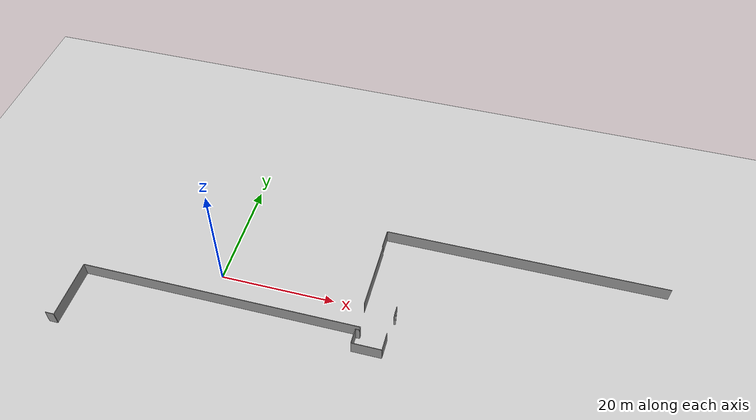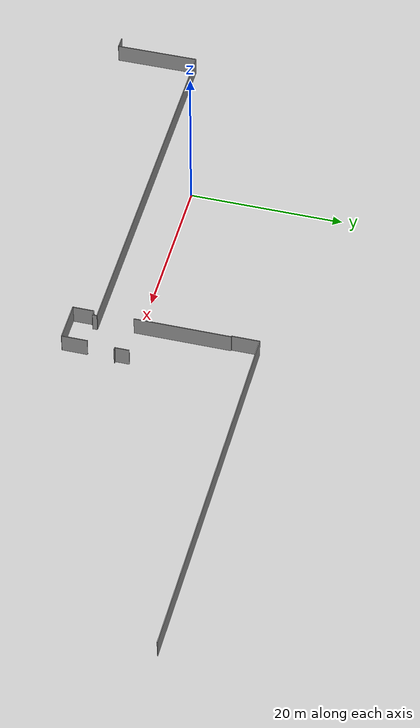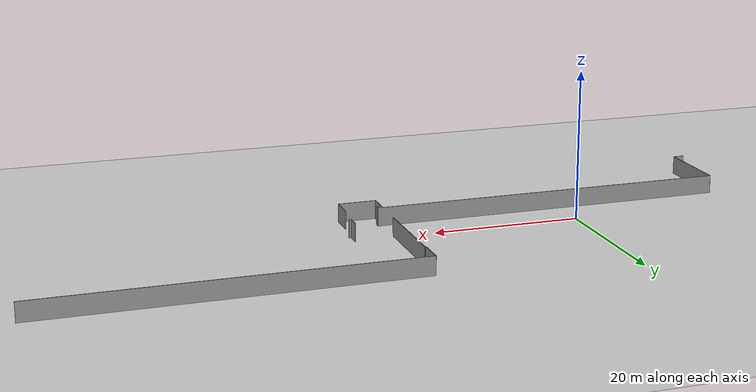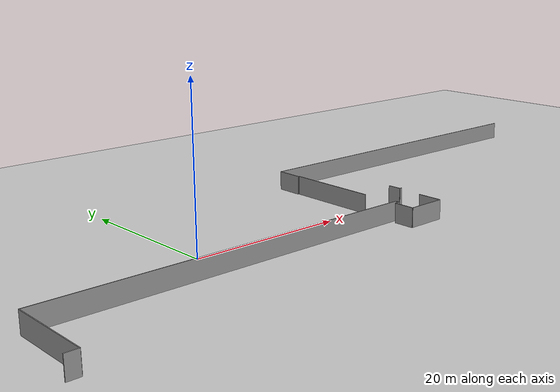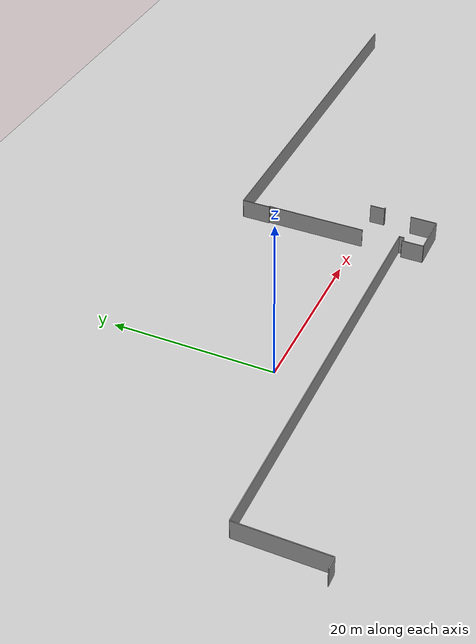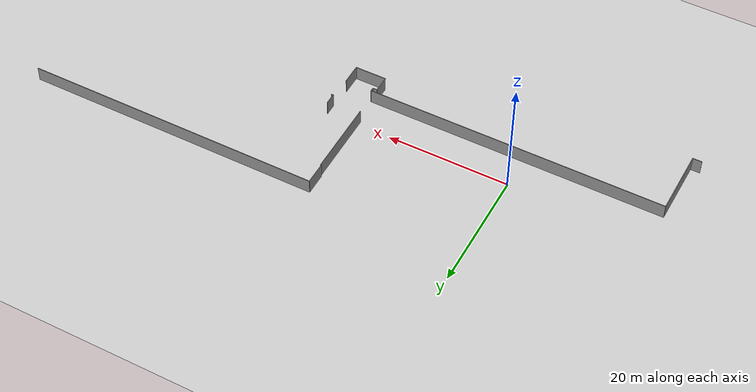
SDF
<sdf version="1.6">
 <world name="default">
  <model name="ground_plane">
   <static>1</static>
   <link name="link">
    <collision name="collision">
     <geometry><plane><normal>0 0 1</normal><size>100 100</size></plane></geometry>
     <surface><friction><ode><mu>100</mu><mu2>50</mu2></ode></friction></surface>
    </collision>
    <visual name="visual">
     <cast_shadows>0</cast_shadows>
     <geometry><plane><normal>0 0 1</normal><size>100 100</size></plane></geometry>
     <material>
      <script><uri>file://media/materials/scripts/gazebo.material</uri><name>Gazebo/Grey</name></script>
     </material>
    </visual>
   </link>
  </model>
  <model name="50055637">
   <static>1</static>
   <link name="Wall_81">
    <collision name="Wall_81_Collision">
     <geometry><box><size>12.4615257585 0.1 2.5</size></box></geometry>
     <pose>6.23076287926 0 1.25 0 0 0</pose>
    </collision>
    <visual name="Wall_81_Visual">
     <pose>6.23076287926 0 1.25 0 0 0</pose>
     <geometry><box><size>12.4615257585 0.1 2.5</size></box></geometry>
     <material>
      <script><uri>file://media/materials/scripts/gazebo.material</uri><name>Gazebo/Grey</name></script>
      <ambient>1 1 1 1</ambient>
     </material>
    </visual>
    <pose>99.5966794332 -16.0461881443 0 0 0 1.57079632679</pose>
   </link>
   <link name="Wall_82">
    <collision name="Wall_82_Collision">
     <geometry><box><size>0.126394949283 0.1 2.5</size></box></geometry>
     <pose>0.0631974746416 0 1.25 0 0 0</pose>
    </collision>
    <visual name="Wall_82_Visual">
     <pose>0.0631974746416 0 1.25 0 0 0</pose>
     <geometry><box><size>0.126394949283 0.1 2.5</size></box></geometry>
     <material>
      <script><uri>file://media/materials/scripts/gazebo.material</uri><name>Gazebo/Grey</name></script>
      <ambient>1 1 1 1</ambient>
     </material>
    </visual>
    <pose>99.5966794332 -3.58466238575 0 0 0 3.14159265359</pose>
   </link>
   <link name="Wall_83">
    <collision name="Wall_83_Collision">
     <geometry><box><size>3.58466238575 0.1 2.5</size></box></geometry>
     <pose>1.79233119288 0 1.25 0 0 0</pose>
    </collision>
    <visual name="Wall_83_Visual">
     <pose>1.79233119288 0 1.25 0 0 0</pose>
     <geometry><box><size>3.58466238575 0.1 2.5</size></box></geometry>
     <material>
      <script><uri>file://media/materials/scripts/gazebo.material</uri><name>Gazebo/Grey</name></script>
      <ambient>1 1 1 1</ambient>
     </material>
    </visual>
    <pose>99.4702844839 -3.58466238575 0 0 0 1.57079632679</pose>
   </link>
   <link name="Wall_84">
    <collision name="Wall_84_Collision">
     <geometry><box><size>48.8735605902 0.1 2.5</size></box></geometry>
     <pose>24.4367802951 0 1.25 0 0 0</pose>
    </collision>
    <visual name="Wall_84_Visual">
     <pose>24.4367802951 0 1.25 0 0 0</pose>
     <geometry><box><size>48.8735605902 0.1 2.5</size></box></geometry>
     <material>
      <script><uri>file://media/materials/scripts/gazebo.material</uri><name>Gazebo/Grey</name></script>
      <ambient>1 1 1 1</ambient>
     </material>
    </visual>
    <pose>99.4702844839 -0.0 0 0 0 0.0</pose>
   </link>
   <link name="Wall_95">
    <collision name="Wall_95_Collision">
     <geometry><box><size>1.85692599862 0.1 2.5</size></box></geometry>
     <pose>0.928462999308 0 1.25 0 0 0</pose>
    </collision>
    <visual name="Wall_95_Visual">
     <pose>0.928462999308 0 1.25 0 0 0</pose>
     <geometry><box><size>1.85692599862 0.1 2.5</size></box></geometry>
     <material>
      <script><uri>file://media/materials/scripts/gazebo.material</uri><name>Gazebo/Grey</name></script>
      <ambient>1 1 1 1</ambient>
     </material>
    </visual>
    <pose>104.923813698 -15.1833997066 0 0 0 -1.57079632679</pose>
   </link>
   <link name="Wall_96">
    <collision name="Wall_96_Collision">
     <geometry><box><size>0.316559008657 0.1 2.5</size></box></geometry>
     <pose>0.158279504329 0 1.25 0 0 0</pose>
    </collision>
    <visual name="Wall_96_Visual">
     <pose>0.158279504329 0 1.25 0 0 0</pose>
     <geometry><box><size>0.316559008657 0.1 2.5</size></box></geometry>
     <material>
      <script><uri>file://media/materials/scripts/gazebo.material</uri><name>Gazebo/Grey</name></script>
      <ambient>1 1 1 1</ambient>
     </material>
    </visual>
    <pose>104.923813698 -17.0403257052 0 0 0 0.0</pose>
   </link>
   <link name="Wall_99">
    <collision name="Wall_99_Collision">
     <geometry><box><size>3.31180173142 0.1 2.5</size></box></geometry>
     <pose>1.65590086571 0 1.25 0 0 0</pose>
    </collision>
    <visual name="Wall_99_Visual">
     <pose>1.65590086571 0 1.25 0 0 0</pose>
     <geometry><box><size>3.31180173142 0.1 2.5</size></box></geometry>
     <material>
      <script><uri>file://media/materials/scripts/gazebo.material</uri><name>Gazebo/Grey</name></script>
      <ambient>1 1 1 1</ambient>
     </material>
    </visual>
    <pose>104.618687398 -20.6293071143 0 0 0 -1.57079632679</pose>
   </link>
   <link name="Wall_100">
    <collision name="Wall_100_Collision">
     <geometry><box><size>5.10686407144 0.1 2.5</size></box></geometry>
     <pose>2.55343203572 0 1.25 0 0 0</pose>
    </collision>
    <visual name="Wall_100_Visual">
     <pose>2.55343203572 0 1.25 0 0 0</pose>
     <geometry><box><size>5.10686407144 0.1 2.5</size></box></geometry>
     <material>
      <script><uri>file://media/materials/scripts/gazebo.material</uri><name>Gazebo/Grey</name></script>
      <ambient>1 1 1 1</ambient>
     </material>
    </visual>
    <pose>104.618687398 -23.9411088457 0 0 0 3.14159265359</pose>
   </link>
   <link name="Wall_101">
    <collision name="Wall_101_Collision">
     <geometry><box><size>2.72530376073 0.1 2.5</size></box></geometry>
     <pose>1.36265188036 0 1.25 0 0 0</pose>
    </collision>
    <visual name="Wall_101_Visual">
     <pose>1.36265188036 0 1.25 0 0 0</pose>
     <geometry><box><size>2.72530376073 0.1 2.5</size></box></geometry>
     <material>
      <script><uri>file://media/materials/scripts/gazebo.material</uri><name>Gazebo/Grey</name></script>
      <ambient>1 1 1 1</ambient>
     </material>
    </visual>
    <pose>99.5118233265 -23.9411088457 0 0 0 1.57079632679</pose>
   </link>
   <link name="Wall_102">
    <collision name="Wall_102_Collision">
     <geometry><box><size>0.68824908062 0.1 2.5</size></box></geometry>
     <pose>0.34412454031 0 1.25 0 0 0</pose>
    </collision>
    <visual name="Wall_102_Visual">
     <pose>0.34412454031 0 1.25 0 0 0</pose>
     <geometry><box><size>0.68824908062 0.1 2.5</size></box></geometry>
     <material>
      <script><uri>file://media/materials/scripts/gazebo.material</uri><name>Gazebo/Grey</name></script>
      <ambient>1 1 1 1</ambient>
     </material>
    </visual>
    <pose>99.5118233265 -21.215805085 0 0 0 0.0</pose>
   </link>
   <link name="Wall_103">
    <collision name="Wall_103_Collision">
     <geometry><box><size>0.577732893809 0.1 2.5</size></box></geometry>
     <pose>0.288866446905 0 1.25 0 0 0</pose>
    </collision>
    <visual name="Wall_103_Visual">
     <pose>0.288866446905 0 1.25 0 0 0</pose>
     <geometry><box><size>0.577732893809 0.1 2.5</size></box></geometry>
     <material>
      <script><uri>file://media/materials/scripts/gazebo.material</uri><name>Gazebo/Grey</name></script>
      <ambient>1 1 1 1</ambient>
     </material>
    </visual>
    <pose>100.200072407 -21.215805085 0 0 0 1.57079632679</pose>
   </link>
   <link name="Wall_104">
    <collision name="Wall_104_Collision">
     <geometry><box><size>48.9110344696 0.1 2.5</size></box></geometry>
     <pose>24.4555172348 0 1.25 0 0 0</pose>
    </collision>
    <visual name="Wall_104_Visual">
     <pose>24.4555172348 0 1.25 0 0 0</pose>
     <geometry><box><size>48.9110344696 0.1 2.5</size></box></geometry>
     <material>
      <script><uri>file://media/materials/scripts/gazebo.material</uri><name>Gazebo/Grey</name></script>
      <ambient>1 1 1 1</ambient>
     </material>
    </visual>
    <pose>100.200072407 -20.6380721912 0 0 0 3.14159265359</pose>
   </link>
   <link name="Wall_105">
    <collision name="Wall_105_Collision">
     <geometry><box><size>10.6704013516 0.1 2.5</size></box></geometry>
     <pose>5.3352006758 0 1.25 0 0 0</pose>
    </collision>
    <visual name="Wall_105_Visual">
     <pose>5.3352006758 0 1.25 0 0 0</pose>
     <geometry><box><size>10.6704013516 0.1 2.5</size></box></geometry>
     <material>
      <script><uri>file://media/materials/scripts/gazebo.material</uri><name>Gazebo/Grey</name></script>
      <ambient>1 1 1 1</ambient>
     </material>
    </visual>
    <pose>51.2890379375 -20.6380721912 0 0 0 -1.57079632679</pose>
   </link>
   <link name="Wall_106">
    <collision name="Wall_106_Collision">
     <geometry><box><size>1.50429327893 0.1 2.5</size></box></geometry>
     <pose>0.752146639465 0 1.25 0 0 0</pose>
    </collision>
    <visual name="Wall_106_Visual">
     <pose>0.752146639465 0 1.25 0 0 0</pose>
     <geometry><box><size>1.50429327893 0.1 2.5</size></box></geometry>
     <material>
      <script><uri>file://media/materials/scripts/gazebo.material</uri><name>Gazebo/Grey</name></script>
      <ambient>1 1 1 1</ambient>
     </material>
    </visual>
    <pose>51.2890379375 -31.3084735428 0 0 0 -3.13965041655</pose>
   </link>
   <pose>-74.15 15.3113952351 0 0 0 0</pose>
  </model>
 </world>
</sdf>
